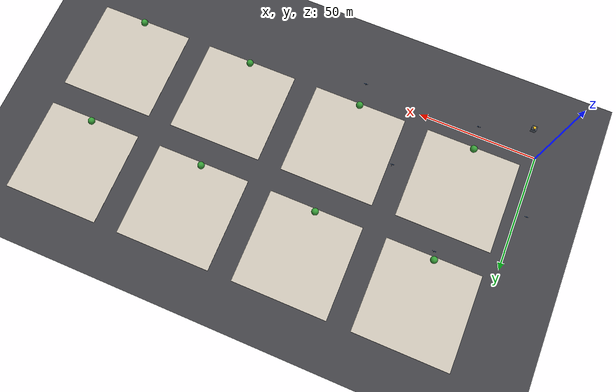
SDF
<sdf version="1.6">
 <world name="civiclens_indian_city">
  <model name="ground_plane">
   <static>true</static>
   <link name="link">
    <collision name="collision">
     <geometry><plane><normal>0 0 1</normal><size>350 350</size></plane></geometry>
    </collision>
    <visual name="asphalt">
     <geometry><plane><normal>0 0 1</normal><size>350 350</size></plane></geometry>
     <material>
      <ambient>0.22 0.22 0.24 1</ambient>
      <diffuse>0.25 0.25 0.27 1</diffuse>
      <specular>0.08 0.08 0.08 1</specular>
     </material>
    </visual>
   </link>
  </model>
  <model name="sidewalk_block_0_0">
   <static>true</static>
   <pose>25 25 0.04 0 0 0</pose>
   <link name="link">
    <collision name="col"><geometry><box><size>40 40 0.08</size></box></geometry></collision>
    <visual name="pavement">
     <geometry><box><size>40 40 0.08</size></box></geometry>
     <material>
      <ambient>0.72 0.70 0.65 1</ambient>
      <diffuse>0.78 0.75 0.70 1</diffuse>
      <specular>0.1 0.1 0.1 1</specular>
     </material>
    </visual>
   </link>
  </model>
  <model name="street_tree_1">
   <static>true</static>
   <pose>25 7 0.08 0 0 0</pose>
   <link name="link">
    <visual name="trunk">
     <pose>0 0 1.2 0 0 0</pose>
     <geometry><cylinder><radius>0.18</radius><length>2.4</length></cylinder></geometry>
     <material><ambient>0.35 0.20 0.08 1</ambient></material>
    </visual>
    <visual name="canopy">
     <pose>0 0 2.8 0 0 0</pose>
     <geometry><sphere><radius>1.5</radius></sphere></geometry>
     <material><ambient>0.18 0.55 0.18 1</ambient><diffuse>0.22 0.62 0.22 1</diffuse></material>
    </visual>
   </link>
  </model>
  <model name="sidewalk_block_0_1">
   <static>true</static>
   <pose>75 25 0.04 0 0 0</pose>
   <link name="link">
    <collision name="col"><geometry><box><size>40 40 0.08</size></box></geometry></collision>
    <visual name="pavement">
     <geometry><box><size>40 40 0.08</size></box></geometry>
     <material>
      <ambient>0.72 0.70 0.65 1</ambient>
      <diffuse>0.78 0.75 0.70 1</diffuse>
      <specular>0.1 0.1 0.1 1</specular>
     </material>
    </visual>
   </link>
  </model>
  <model name="street_tree_2">
   <static>true</static>
   <pose>75 7 0.08 0 0 0</pose>
   <link name="link">
    <visual name="trunk">
     <pose>0 0 1.2 0 0 0</pose>
     <geometry><cylinder><radius>0.18</radius><length>2.4</length></cylinder></geometry>
     <material><ambient>0.35 0.20 0.08 1</ambient></material>
    </visual>
    <visual name="canopy">
     <pose>0 0 2.8 0 0 0</pose>
     <geometry><sphere><radius>1.5</radius></sphere></geometry>
     <material><ambient>0.18 0.55 0.18 1</ambient><diffuse>0.22 0.62 0.22 1</diffuse></material>
    </visual>
   </link>
  </model>
  <model name="sidewalk_block_0_2">
   <static>true</static>
   <pose>125 25 0.04 0 0 0</pose>
   <link name="link">
    <collision name="col"><geometry><box><size>40 40 0.08</size></box></geometry></collision>
    <visual name="pavement">
     <geometry><box><size>40 40 0.08</size></box></geometry>
     <material>
      <ambient>0.72 0.70 0.65 1</ambient>
      <diffuse>0.78 0.75 0.70 1</diffuse>
      <specular>0.1 0.1 0.1 1</specular>
     </material>
    </visual>
   </link>
  </model>
  <model name="street_tree_3">
   <static>true</static>
   <pose>125 7 0.08 0 0 0</pose>
   <link name="link">
    <visual name="trunk">
     <pose>0 0 1.2 0 0 0</pose>
     <geometry><cylinder><radius>0.18</radius><length>2.4</length></cylinder></geometry>
     <material><ambient>0.35 0.20 0.08 1</ambient></material>
    </visual>
    <visual name="canopy">
     <pose>0 0 2.8 0 0 0</pose>
     <geometry><sphere><radius>1.5</radius></sphere></geometry>
     <material><ambient>0.18 0.55 0.18 1</ambient><diffuse>0.22 0.62 0.22 1</diffuse></material>
    </visual>
   </link>
  </model>
  <model name="sidewalk_block_0_3">
   <static>true</static>
   <pose>175 25 0.04 0 0 0</pose>
   <link name="link">
    <collision name="col"><geometry><box><size>40 40 0.08</size></box></geometry></collision>
    <visual name="pavement">
     <geometry><box><size>40 40 0.08</size></box></geometry>
     <material>
      <ambient>0.72 0.70 0.65 1</ambient>
      <diffuse>0.78 0.75 0.70 1</diffuse>
      <specular>0.1 0.1 0.1 1</specular>
     </material>
    </visual>
   </link>
  </model>
  <model name="street_tree_4">
   <static>true</static>
   <pose>175 7 0.08 0 0 0</pose>
   <link name="link">
    <visual name="trunk">
     <pose>0 0 1.2 0 0 0</pose>
     <geometry><cylinder><radius>0.18</radius><length>2.4</length></cylinder></geometry>
     <material><ambient>0.35 0.20 0.08 1</ambient></material>
    </visual>
    <visual name="canopy">
     <pose>0 0 2.8 0 0 0</pose>
     <geometry><sphere><radius>1.5</radius></sphere></geometry>
     <material><ambient>0.18 0.55 0.18 1</ambient><diffuse>0.22 0.62 0.22 1</diffuse></material>
    </visual>
   </link>
  </model>
  <model name="sidewalk_block_1_0">
   <static>true</static>
   <pose>25 75 0.04 0 0 0</pose>
   <link name="link">
    <collision name="col"><geometry><box><size>40 40 0.08</size></box></geometry></collision>
    <visual name="pavement">
     <geometry><box><size>40 40 0.08</size></box></geometry>
     <material>
      <ambient>0.72 0.70 0.65 1</ambient>
      <diffuse>0.78 0.75 0.70 1</diffuse>
      <specular>0.1 0.1 0.1 1</specular>
     </material>
    </visual>
   </link>
  </model>
  <model name="street_tree_5">
   <static>true</static>
   <pose>25 57 0.08 0 0 0</pose>
   <link name="link">
    <visual name="trunk">
     <pose>0 0 1.2 0 0 0</pose>
     <geometry><cylinder><radius>0.18</radius><length>2.4</length></cylinder></geometry>
     <material><ambient>0.35 0.20 0.08 1</ambient></material>
    </visual>
    <visual name="canopy">
     <pose>0 0 2.8 0 0 0</pose>
     <geometry><sphere><radius>1.5</radius></sphere></geometry>
     <material><ambient>0.18 0.55 0.18 1</ambient><diffuse>0.22 0.62 0.22 1</diffuse></material>
    </visual>
   </link>
  </model>
  <model name="sidewalk_block_1_1">
   <static>true</static>
   <pose>75 75 0.04 0 0 0</pose>
   <link name="link">
    <collision name="col"><geometry><box><size>40 40 0.08</size></box></geometry></collision>
    <visual name="pavement">
     <geometry><box><size>40 40 0.08</size></box></geometry>
     <material>
      <ambient>0.72 0.70 0.65 1</ambient>
      <diffuse>0.78 0.75 0.70 1</diffuse>
      <specular>0.1 0.1 0.1 1</specular>
     </material>
    </visual>
   </link>
  </model>
  <model name="street_tree_6">
   <static>true</static>
   <pose>75 57 0.08 0 0 0</pose>
   <link name="link">
    <visual name="trunk">
     <pose>0 0 1.2 0 0 0</pose>
     <geometry><cylinder><radius>0.18</radius><length>2.4</length></cylinder></geometry>
     <material><ambient>0.35 0.20 0.08 1</ambient></material>
    </visual>
    <visual name="canopy">
     <pose>0 0 2.8 0 0 0</pose>
     <geometry><sphere><radius>1.5</radius></sphere></geometry>
     <material><ambient>0.18 0.55 0.18 1</ambient><diffuse>0.22 0.62 0.22 1</diffuse></material>
    </visual>
   </link>
  </model>
  <model name="sidewalk_block_1_2">
   <static>true</static>
   <pose>125 75 0.04 0 0 0</pose>
   <link name="link">
    <collision name="col"><geometry><box><size>40 40 0.08</size></box></geometry></collision>
    <visual name="pavement">
     <geometry><box><size>40 40 0.08</size></box></geometry>
     <material>
      <ambient>0.72 0.70 0.65 1</ambient>
      <diffuse>0.78 0.75 0.70 1</diffuse>
      <specular>0.1 0.1 0.1 1</specular>
     </material>
    </visual>
   </link>
  </model>
  <model name="street_tree_7">
   <static>true</static>
   <pose>125 57 0.08 0 0 0</pose>
   <link name="link">
    <visual name="trunk">
     <pose>0 0 1.2 0 0 0</pose>
     <geometry><cylinder><radius>0.18</radius><length>2.4</length></cylinder></geometry>
     <material><ambient>0.35 0.20 0.08 1</ambient></material>
    </visual>
    <visual name="canopy">
     <pose>0 0 2.8 0 0 0</pose>
     <geometry><sphere><radius>1.5</radius></sphere></geometry>
     <material><ambient>0.18 0.55 0.18 1</ambient><diffuse>0.22 0.62 0.22 1</diffuse></material>
    </visual>
   </link>
  </model>
  <model name="sidewalk_block_1_3">
   <static>true</static>
   <pose>175 75 0.04 0 0 0</pose>
   <link name="link">
    <collision name="col"><geometry><box><size>40 40 0.08</size></box></geometry></collision>
    <visual name="pavement">
     <geometry><box><size>40 40 0.08</size></box></geometry>
     <material>
      <ambient>0.72 0.70 0.65 1</ambient>
      <diffuse>0.78 0.75 0.70 1</diffuse>
      <specular>0.1 0.1 0.1 1</specular>
     </material>
    </visual>
   </link>
  </model>
  <model name="street_tree_8">
   <static>true</static>
   <pose>175 57 0.08 0 0 0</pose>
   <link name="link">
    <visual name="trunk">
     <pose>0 0 1.2 0 0 0</pose>
     <geometry><cylinder><radius>0.18</radius><length>2.4</length></cylinder></geometry>
     <material><ambient>0.35 0.20 0.08 1</ambient></material>
    </visual>
    <visual name="canopy">
     <pose>0 0 2.8 0 0 0</pose>
     <geometry><sphere><radius>1.5</radius></sphere></geometry>
     <material><ambient>0.18 0.55 0.18 1</ambient><diffuse>0.22 0.62 0.22 1</diffuse></material>
    </visual>
   </link>
  </model>
  <model name="street_sign_1">
   <static>true</static>
   <pose>26.0 -3.5 0 0 0 0</pose>
   <link name="link">
    <visual name="post">
     <pose>0 0 1.2 0 0 0</pose>
     <geometry><cylinder><radius>0.04</radius><length>2.4</length></cylinder></geometry>
     <material><ambient>0.3 0.3 0.35 1</ambient></material>
    </visual>
    <visual name="sign_board">
     <pose>0 0 2.2 0 0 0</pose>
     <geometry><box><size>1.6 0.06 0.4</size></box></geometry>
     <material><ambient>0.12 0.35 0.65 1</ambient><diffuse>0.15 0.45 0.85 1</diffuse></material>
    </visual>
    <visual name="sign_border">
     <pose>0 0 2.2 0 0 0</pose>
     <geometry><box><size>1.64 0.05 0.44</size></box></geometry>
     <material><ambient>0.9 0.9 0.9 1</ambient></material>
    </visual>
   </link>
  </model>
  <model name="street_sign_2">
   <static>true</static>
   <pose>53.5 26.0 0 0 0 0</pose>
   <link name="link">
    <visual name="post">
     <pose>0 0 1.2 0 0 0</pose>
     <geometry><cylinder><radius>0.04</radius><length>2.4</length></cylinder></geometry>
     <material><ambient>0.3 0.3 0.35 1</ambient></material>
    </visual>
    <visual name="sign_board">
     <pose>0 0 2.2 0 0 0</pose>
     <geometry><box><size>1.6 0.06 0.4</size></box></geometry>
     <material><ambient>0.12 0.35 0.65 1</ambient><diffuse>0.15 0.45 0.85 1</diffuse></material>
    </visual>
    <visual name="sign_border">
     <pose>0 0 2.2 0 0 0</pose>
     <geometry><box><size>1.64 0.05 0.44</size></box></geometry>
     <material><ambient>0.9 0.9 0.9 1</ambient></material>
    </visual>
   </link>
  </model>
  <model name="street_sign_3">
   <static>true</static>
   <pose>26.0 53.5 0 0 0 0</pose>
   <link name="link">
    <visual name="post">
     <pose>0 0 1.2 0 0 0</pose>
     <geometry><cylinder><radius>0.04</radius><length>2.4</length></cylinder></geometry>
     <material><ambient>0.3 0.3 0.35 1</ambient></material>
    </visual>
    <visual name="sign_board">
     <pose>0 0 2.2 0 0 0</pose>
     <geometry><box><size>1.6 0.06 0.4</size></box></geometry>
     <material><ambient>0.12 0.35 0.65 1</ambient><diffuse>0.15 0.45 0.85 1</diffuse></material>
    </visual>
    <visual name="sign_border">
     <pose>0 0 2.2 0 0 0</pose>
     <geometry><box><size>1.64 0.05 0.44</size></box></geometry>
     <material><ambient>0.9 0.9 0.9 1</ambient></material>
    </visual>
   </link>
  </model>
  <model name="street_sign_4">
   <static>true</static>
   <pose>-3.5 26.0 0 0 0 0</pose>
   <link name="link">
    <visual name="post">
     <pose>0 0 1.2 0 0 0</pose>
     <geometry><cylinder><radius>0.04</radius><length>2.4</length></cylinder></geometry>
     <material><ambient>0.3 0.3 0.35 1</ambient></material>
    </visual>
    <visual name="sign_board">
     <pose>0 0 2.2 0 0 0</pose>
     <geometry><box><size>1.6 0.06 0.4</size></box></geometry>
     <material><ambient>0.12 0.35 0.65 1</ambient><diffuse>0.15 0.45 0.85 1</diffuse></material>
    </visual>
    <visual name="sign_border">
     <pose>0 0 2.2 0 0 0</pose>
     <geometry><box><size>1.64 0.05 0.44</size></box></geometry>
     <material><ambient>0.9 0.9 0.9 1</ambient></material>
    </visual>
   </link>
  </model>
  <model name="street_sign_5">
   <static>true</static>
   <pose>76.0 -3.5 0 0 0 0</pose>
   <link name="link">
    <visual name="post">
     <pose>0 0 1.2 0 0 0</pose>
     <geometry><cylinder><radius>0.04</radius><length>2.4</length></cylinder></geometry>
     <material><ambient>0.3 0.3 0.35 1</ambient></material>
    </visual>
    <visual name="sign_board">
     <pose>0 0 2.2 0 0 0</pose>
     <geometry><box><size>1.6 0.06 0.4</size></box></geometry>
     <material><ambient>0.12 0.35 0.65 1</ambient><diffuse>0.15 0.45 0.85 1</diffuse></material>
    </visual>
    <visual name="sign_border">
     <pose>0 0 2.2 0 0 0</pose>
     <geometry><box><size>1.64 0.05 0.44</size></box></geometry>
     <material><ambient>0.9 0.9 0.9 1</ambient></material>
    </visual>
   </link>
  </model>
  <model name="base_shredder_plant">
   <static>true</static>
   <pose>4.5 -12.0 0 0 0 0</pose>
   <link name="link">
    <visual name="shredder_chassis">
     <pose>0 0 1.0 0 0 0</pose>
     <geometry><box><size>2.2 2.0 2.0</size></box></geometry>
     <material><ambient>0.2 0.22 0.25 1</ambient><diffuse>0.25 0.28 0.32 1</diffuse></material>
    </visual>
    <visual name="shredder_hopper">
     <pose>0 0 2.2 0 0 0</pose>
     <geometry><cylinder><radius>0.6</radius><length>0.6</length></cylinder></geometry>
     <material><ambient>0.85 0.65 0.1 1</ambient><diffuse>0.92 0.72 0.12 1</diffuse></material>
    </visual>
    <visual name="recycling_sign">
     <pose>0 -1.02 1.4 0 0 0</pose>
     <geometry><box><size>1.8 0.04 0.5</size></box></geometry>
     <material><ambient>0.15 0.6 0.2 1</ambient><diffuse>0.18 0.7 0.25 1</diffuse></material>
    </visual>
   </link>
  </model>
 </world>
</sdf>
